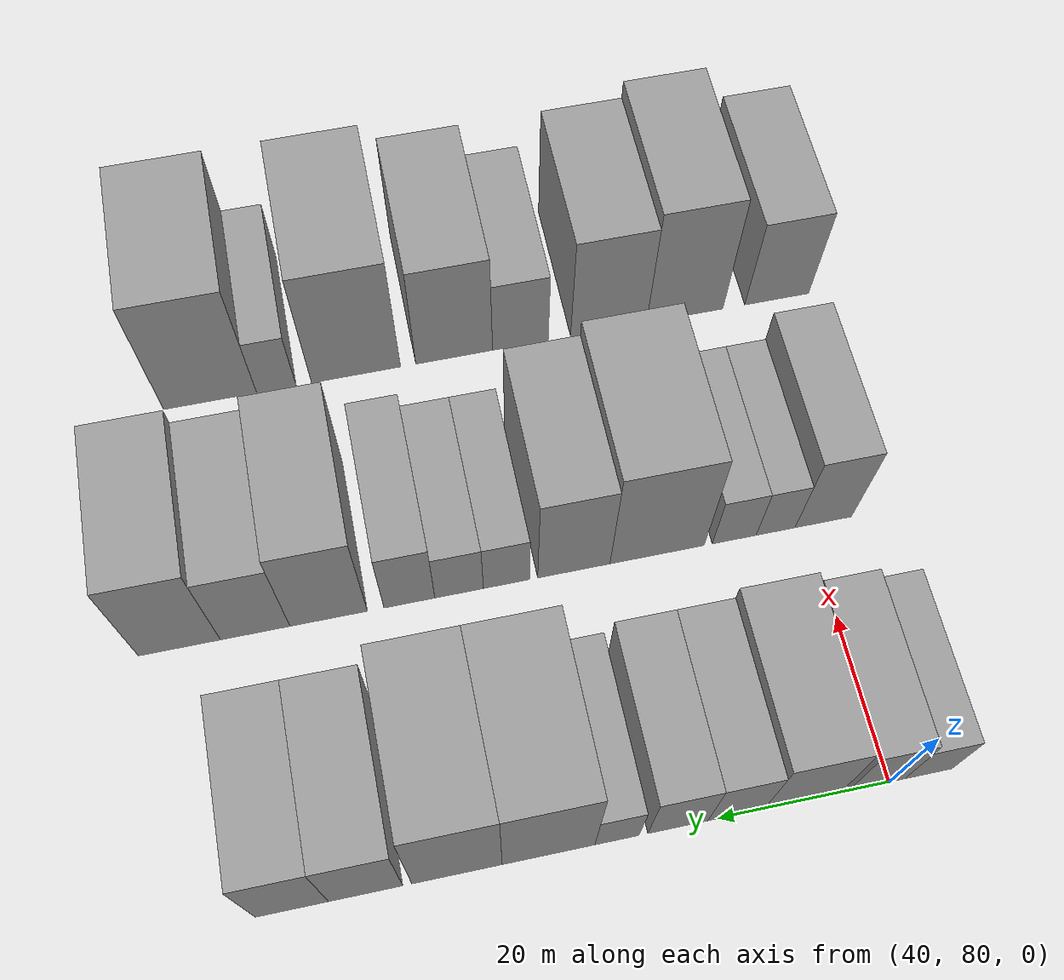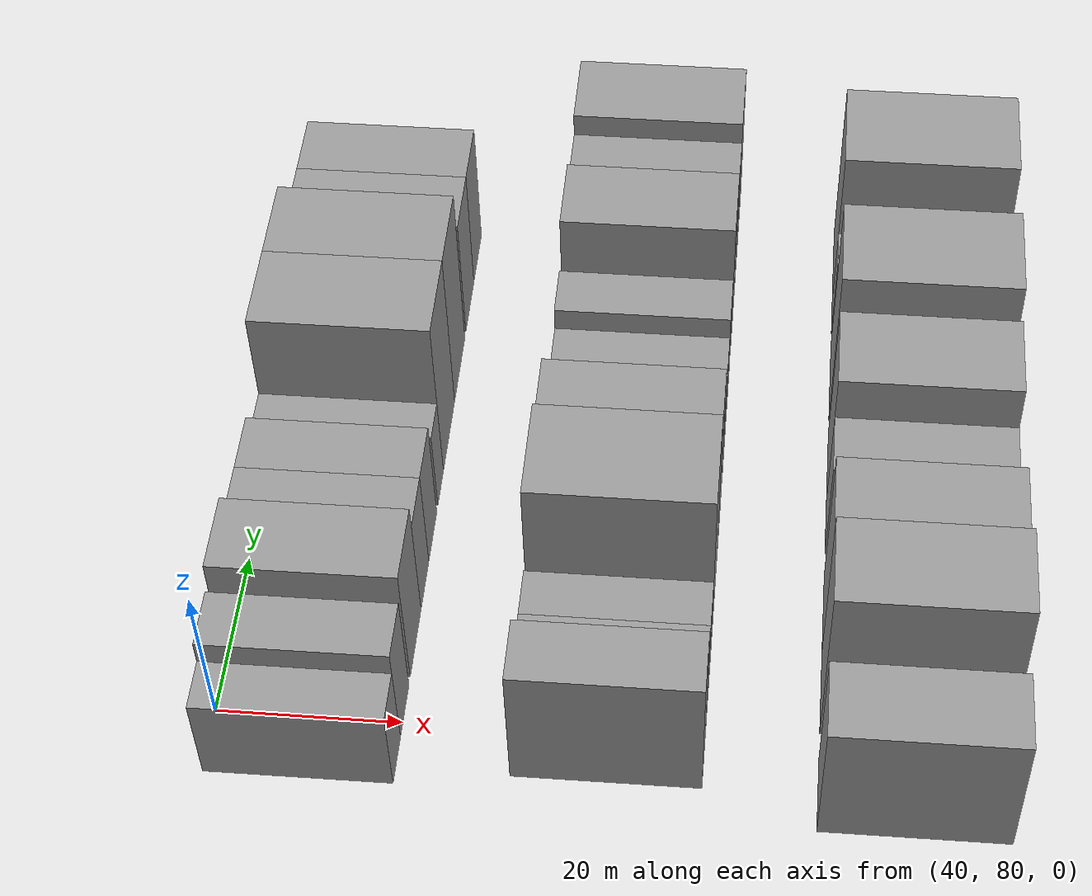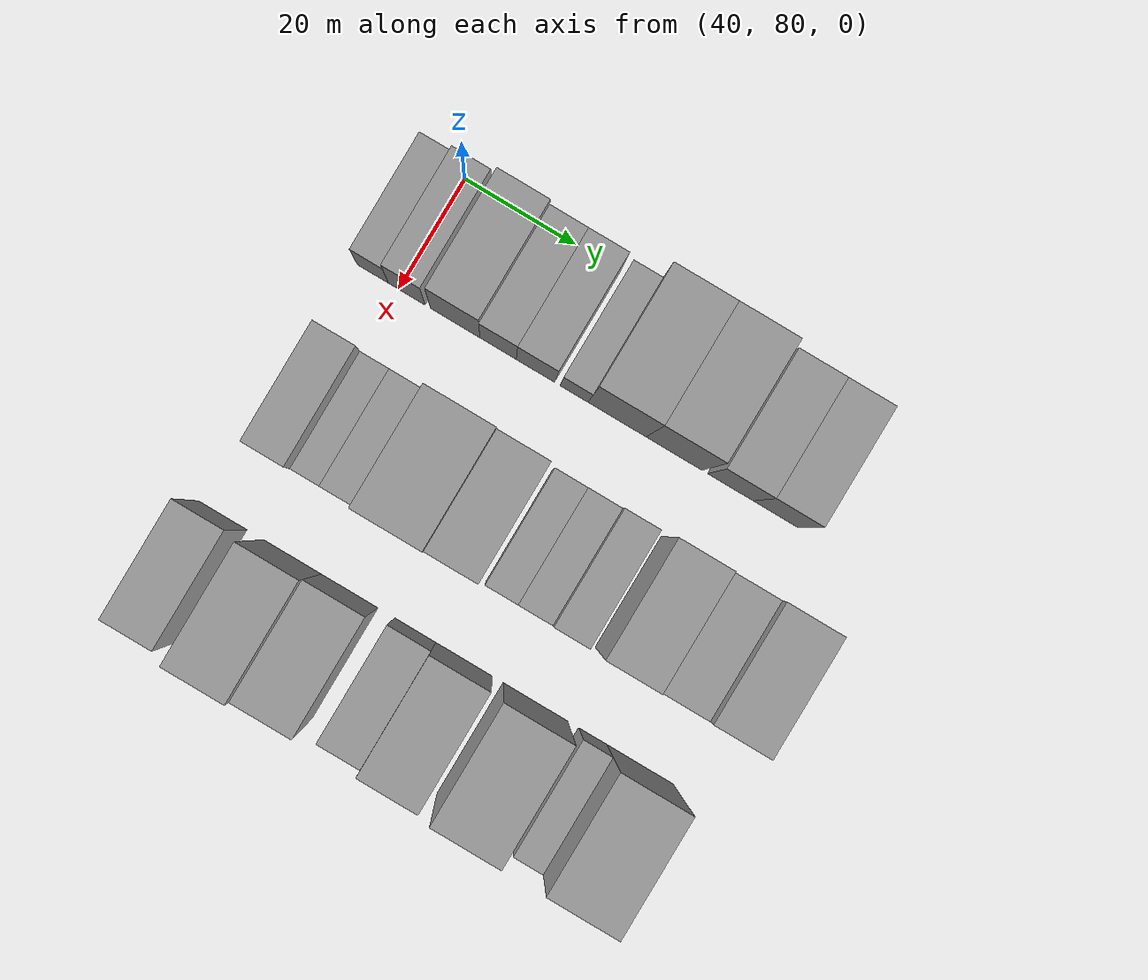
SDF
<sdf version="1.6">
 <world name="default">
  <model name="building_49">
   <static>1</static>
   <pose>50.0000 75.3613 0 0.000000 0.000000 0.000000</pose>
   <link name="link">
    <pose>0 0 6.00 0 0 0</pose>
    <collision name="collision"><geometry><box><size>20.0000 5.6104 12.0000</size></box></geometry></collision>
    <visual name="visual">
     <cast_shadows>0</cast_shadows>
     <geometry><box><size>20.0000 5.6104 12.0000</size></box></geometry>
     <material>
      <script>
       <uri>model://grey_wall/materials/scripts</uri>
       <uri>model://grey_wall/materials/textures</uri>
       <name>vrc/grey_wall</name>
      </script>
     </material>
    </visual>
   </link>
  </model>
  <model name="building_50">
   <static>1</static>
   <pose>50.0000 81.4512 0 0.000000 0.000000 0.000000</pose>
   <link name="link">
    <pose>0 0 7.50 0 0 0</pose>
    <collision name="collision"><geometry><box><size>20.0000 6.5694 15.0000</size></box></geometry></collision>
    <visual name="visual">
     <cast_shadows>0</cast_shadows>
     <geometry><box><size>20.0000 6.5694 15.0000</size></box></geometry>
     <material>
      <script>
       <uri>model://grey_wall/materials/scripts</uri>
       <uri>model://grey_wall/materials/textures</uri>
       <name>vrc/grey_wall</name>
      </script>
     </material>
    </visual>
   </link>
  </model>
  <model name="building_51">
   <static>1</static>
   <pose>50.0000 90.1794 0 0.000000 0.000000 0.000000</pose>
   <link name="link">
    <pose>0 0 9.00 0 0 0</pose>
    <collision name="collision"><geometry><box><size>20.0000 8.8872 18.0000</size></box></geometry></collision>
    <visual name="visual">
     <cast_shadows>0</cast_shadows>
     <geometry><box><size>20.0000 8.8872 18.0000</size></box></geometry>
     <material>
      <script>
       <uri>model://grey_wall/materials/scripts</uri>
       <uri>model://grey_wall/materials/textures</uri>
       <name>vrc/grey_wall</name>
      </script>
     </material>
    </visual>
   </link>
  </model>
  <model name="building_52">
   <static>1</static>
   <pose>50.0000 97.8968 0 0.000000 0.000000 0.000000</pose>
   <link name="link">
    <pose>0 0 7.50 0 0 0</pose>
    <collision name="collision"><geometry><box><size>20.0000 6.5476 15.0000</size></box></geometry></collision>
    <visual name="visual">
     <cast_shadows>0</cast_shadows>
     <geometry><box><size>20.0000 6.5476 15.0000</size></box></geometry>
     <material>
      <script>
       <uri>model://grey_wall/materials/scripts</uri>
       <uri>model://grey_wall/materials/textures</uri>
       <name>vrc/grey_wall</name>
      </script>
     </material>
    </visual>
   </link>
  </model>
  <model name="building_53">
   <static>1</static>
   <pose>50.0000 104.6237 0 0.000000 0.000000 0.000000</pose>
   <link name="link">
    <pose>0 0 7.50 0 0 0</pose>
    <collision name="collision"><geometry><box><size>20.0000 6.9063 15.0000</size></box></geometry></collision>
    <visual name="visual">
     <cast_shadows>0</cast_shadows>
     <geometry><box><size>20.0000 6.9063 15.0000</size></box></geometry>
     <material>
      <script>
       <uri>model://grey_wall/materials/scripts</uri>
       <uri>model://grey_wall/materials/textures</uri>
       <name>vrc/grey_wall</name>
      </script>
     </material>
    </visual>
   </link>
  </model>
  <model name="building_54">
   <static>1</static>
   <pose>50.0000 111.5952 0 0.000000 0.000000 0.000000</pose>
   <link name="link">
    <pose>0 0 6.00 0 0 0</pose>
    <collision name="collision"><geometry><box><size>20.0000 5.0366 12.0000</size></box></geometry></collision>
    <visual name="visual">
     <cast_shadows>0</cast_shadows>
     <geometry><box><size>20.0000 5.0366 12.0000</size></box></geometry>
     <material>
      <script>
       <uri>model://grey_wall/materials/scripts</uri>
       <uri>model://grey_wall/materials/textures</uri>
       <name>vrc/grey_wall</name>
      </script>
     </material>
    </visual>
   </link>
  </model>
  <model name="building_55">
   <static>1</static>
   <pose>50.0000 119.3480 0 0.000000 0.000000 0.000000</pose>
   <link name="link">
    <pose>0 0 12.00 0 0 0</pose>
    <collision name="collision"><geometry><box><size>20.0000 10.4690 24.0000</size></box></geometry></collision>
    <visual name="visual">
     <cast_shadows>0</cast_shadows>
     <geometry><box><size>20.0000 10.4690 24.0000</size></box></geometry>
     <material>
      <script>
       <uri>model://grey_wall/materials/scripts</uri>
       <uri>model://grey_wall/materials/textures</uri>
       <name>vrc/grey_wall</name>
      </script>
     </material>
    </visual>
   </link>
  </model>
  <model name="building_56">
   <static>1</static>
   <pose>50.0000 129.6237 0 0.000000 0.000000 0.000000</pose>
   <link name="link">
    <pose>0 0 12.00 0 0 0</pose>
    <collision name="collision"><geometry><box><size>20.0000 10.0824 24.0000</size></box></geometry></collision>
    <visual name="visual">
     <cast_shadows>0</cast_shadows>
     <geometry><box><size>20.0000 10.0824 24.0000</size></box></geometry>
     <material>
      <script>
       <uri>model://grey_wall/materials/scripts</uri>
       <uri>model://grey_wall/materials/textures</uri>
       <name>vrc/grey_wall</name>
      </script>
     </material>
    </visual>
   </link>
  </model>
  <model name="building_57">
   <static>1</static>
   <pose>50.0000 139.7622 0 0.000000 0.000000 0.000000</pose>
   <link name="link">
    <pose>0 0 9.00 0 0 0</pose>
    <collision name="collision"><geometry><box><size>20.0000 8.1948 18.0000</size></box></geometry></collision>
    <visual name="visual">
     <cast_shadows>0</cast_shadows>
     <geometry><box><size>20.0000 8.1948 18.0000</size></box></geometry>
     <material>
      <script>
       <uri>model://grey_wall/materials/scripts</uri>
       <uri>model://grey_wall/materials/textures</uri>
       <name>vrc/grey_wall</name>
      </script>
     </material>
    </visual>
   </link>
  </model>
  <model name="building_58">
   <static>1</static>
   <pose>50.0000 147.8684 0 0.000000 0.000000 0.000000</pose>
   <link name="link">
    <pose>0 0 9.00 0 0 0</pose>
    <collision name="collision"><geometry><box><size>20.0000 8.0174 18.0000</size></box></geometry></collision>
    <visual name="visual">
     <cast_shadows>0</cast_shadows>
     <geometry><box><size>20.0000 8.0174 18.0000</size></box></geometry>
     <material>
      <script>
       <uri>model://grey_wall/materials/scripts</uri>
       <uri>model://grey_wall/materials/textures</uri>
       <name>vrc/grey_wall</name>
      </script>
     </material>
    </visual>
   </link>
  </model>
  <model name="building_126">
   <static>1</static>
   <pose>82.0000 77.9327 0 0.000000 0.000000 0.000000</pose>
   <link name="link">
    <pose>0 0 9.00 0 0 0</pose>
    <collision name="collision"><geometry><box><size>20.0000 7.2041 18.0000</size></box></geometry></collision>
    <visual name="visual">
     <cast_shadows>0</cast_shadows>
     <geometry><box><size>20.0000 7.2041 18.0000</size></box></geometry>
     <material>
      <script>
       <uri>model://grey_wall/materials/scripts</uri>
       <uri>model://grey_wall/materials/textures</uri>
       <name>vrc/grey_wall</name>
      </script>
     </material>
    </visual>
   </link>
  </model>
  <model name="building_127">
   <static>1</static>
   <pose>82.0000 84.0101 0 0.000000 0.000000 0.000000</pose>
   <link name="link">
    <pose>0 0 6.00 0 0 0</pose>
    <collision name="collision"><geometry><box><size>20.0000 4.9508 12.0000</size></box></geometry></collision>
    <visual name="visual">
     <cast_shadows>0</cast_shadows>
     <geometry><box><size>20.0000 4.9508 12.0000</size></box></geometry>
     <material>
      <script>
       <uri>model://grey_wall/materials/scripts</uri>
       <uri>model://grey_wall/materials/textures</uri>
       <name>vrc/grey_wall</name>
      </script>
     </material>
    </visual>
   </link>
  </model>
  <model name="building_128">
   <static>1</static>
   <pose>82.0000 89.2519 0 0.000000 0.000000 0.000000</pose>
   <link name="link">
    <pose>0 0 6.00 0 0 0</pose>
    <collision name="collision"><geometry><box><size>20.0000 5.5328 12.0000</size></box></geometry></collision>
    <visual name="visual">
     <cast_shadows>0</cast_shadows>
     <geometry><box><size>20.0000 5.5328 12.0000</size></box></geometry>
     <material>
      <script>
       <uri>model://grey_wall/materials/scripts</uri>
       <uri>model://grey_wall/materials/textures</uri>
       <name>vrc/grey_wall</name>
      </script>
     </material>
    </visual>
   </link>
  </model>
  <model name="building_129">
   <static>1</static>
   <pose>82.0000 98.9196 0 0.000000 0.000000 0.000000</pose>
   <link name="link">
    <pose>0 0 12.00 0 0 0</pose>
    <collision name="collision"><geometry><box><size>20.0000 11.8027 24.0000</size></box></geometry></collision>
    <visual name="visual">
     <cast_shadows>0</cast_shadows>
     <geometry><box><size>20.0000 11.8027 24.0000</size></box></geometry>
     <material>
      <script>
       <uri>model://grey_wall/materials/scripts</uri>
       <uri>model://grey_wall/materials/textures</uri>
       <name>vrc/grey_wall</name>
      </script>
     </material>
    </visual>
   </link>
  </model>
  <model name="building_130">
   <static>1</static>
   <pose>82.0000 109.2888 0 0.000000 0.000000 0.000000</pose>
   <link name="link">
    <pose>0 0 10.50 0 0 0</pose>
    <collision name="collision"><geometry><box><size>20.0000 8.9356 21.0000</size></box></geometry></collision>
    <visual name="visual">
     <cast_shadows>0</cast_shadows>
     <geometry><box><size>20.0000 8.9356 21.0000</size></box></geometry>
     <material>
      <script>
       <uri>model://grey_wall/materials/scripts</uri>
       <uri>model://grey_wall/materials/textures</uri>
       <name>vrc/grey_wall</name>
      </script>
     </material>
    </visual>
   </link>
  </model>
  <model name="building_131">
   <static>1</static>
   <pose>82.0000 117.5836 0 0.000000 0.000000 0.000000</pose>
   <link name="link">
    <pose>0 0 6.00 0 0 0</pose>
    <collision name="collision"><geometry><box><size>20.0000 5.6541 12.0000</size></box></geometry></collision>
    <visual name="visual">
     <cast_shadows>0</cast_shadows>
     <geometry><box><size>20.0000 5.6541 12.0000</size></box></geometry>
     <material>
      <script>
       <uri>model://grey_wall/materials/scripts</uri>
       <uri>model://grey_wall/materials/textures</uri>
       <name>vrc/grey_wall</name>
      </script>
     </material>
    </visual>
   </link>
  </model>
  <model name="building_132">
   <static>1</static>
   <pose>82.0000 123.3682 0 0.000000 0.000000 0.000000</pose>
   <link name="link">
    <pose>0 0 6.00 0 0 0</pose>
    <collision name="collision"><geometry><box><size>20.0000 5.9150 12.0000</size></box></geometry></collision>
    <visual name="visual">
     <cast_shadows>0</cast_shadows>
     <geometry><box><size>20.0000 5.9150 12.0000</size></box></geometry>
     <material>
      <script>
       <uri>model://grey_wall/materials/scripts</uri>
       <uri>model://grey_wall/materials/textures</uri>
       <name>vrc/grey_wall</name>
      </script>
     </material>
    </visual>
   </link>
  </model>
  <model name="building_133">
   <static>1</static>
   <pose>82.0000 129.4067 0 0.000000 0.000000 0.000000</pose>
   <link name="link">
    <pose>0 0 7.50 0 0 0</pose>
    <collision name="collision"><geometry><box><size>20.0000 6.1619 15.0000</size></box></geometry></collision>
    <visual name="visual">
     <cast_shadows>0</cast_shadows>
     <geometry><box><size>20.0000 6.1619 15.0000</size></box></geometry>
     <material>
      <script>
       <uri>model://grey_wall/materials/scripts</uri>
       <uri>model://grey_wall/materials/textures</uri>
       <name>vrc/grey_wall</name>
      </script>
     </material>
    </visual>
   </link>
  </model>
  <model name="building_134">
   <static>1</static>
   <pose>82.0000 139.1286 0 0.000000 0.000000 0.000000</pose>
   <link name="link">
    <pose>0 0 10.50 0 0 0</pose>
    <collision name="collision"><geometry><box><size>20.0000 9.2820 21.0000</size></box></geometry></collision>
    <visual name="visual">
     <cast_shadows>0</cast_shadows>
     <geometry><box><size>20.0000 9.2820 21.0000</size></box></geometry>
     <material>
      <script>
       <uri>model://grey_wall/materials/scripts</uri>
       <uri>model://grey_wall/materials/textures</uri>
       <name>vrc/grey_wall</name>
      </script>
     </material>
    </visual>
   </link>
  </model>
  <model name="building_135">
   <static>1</static>
   <pose>82.0000 147.8947 0 0.000000 0.000000 0.000000</pose>
   <link name="link">
    <pose>0 0 9.00 0 0 0</pose>
    <collision name="collision"><geometry><box><size>20.0000 8.2501 18.0000</size></box></geometry></collision>
    <visual name="visual">
     <cast_shadows>0</cast_shadows>
     <geometry><box><size>20.0000 8.2501 18.0000</size></box></geometry>
     <material>
      <script>
       <uri>model://grey_wall/materials/scripts</uri>
       <uri>model://grey_wall/materials/textures</uri>
       <name>vrc/grey_wall</name>
      </script>
     </material>
    </visual>
   </link>
  </model>
  <model name="building_136">
   <static>1</static>
   <pose>82.0000 156.8533 0 0.000000 0.000000 0.000000</pose>
   <link name="link">
    <pose>0 0 10.50 0 0 0</pose>
    <collision name="collision"><geometry><box><size>20.0000 9.6671 21.0000</size></box></geometry></collision>
    <visual name="visual">
     <cast_shadows>0</cast_shadows>
     <geometry><box><size>20.0000 9.6671 21.0000</size></box></geometry>
     <material>
      <script>
       <uri>model://grey_wall/materials/scripts</uri>
       <uri>model://grey_wall/materials/textures</uri>
       <name>vrc/grey_wall</name>
      </script>
     </material>
    </visual>
   </link>
  </model>
  <model name="building_200">
   <static>1</static>
   <pose>114.0000 74.5154 0 0.000000 0.000000 0.000000</pose>
   <link name="link">
    <pose>0 0 9.00 0 0 0</pose>
    <collision name="collision"><geometry><box><size>20.0000 8.7806 18.0000</size></box></geometry></collision>
    <visual name="visual">
     <cast_shadows>0</cast_shadows>
     <geometry><box><size>20.0000 8.7806 18.0000</size></box></geometry>
     <material>
      <script>
       <uri>model://grey_wall/materials/scripts</uri>
       <uri>model://grey_wall/materials/textures</uri>
       <name>vrc/grey_wall</name>
      </script>
     </material>
    </visual>
   </link>
  </model>
  <model name="building_201">
   <static>1</static>
   <pose>114.0000 87.1027 0 0.000000 0.000000 0.000000</pose>
   <link name="link">
    <pose>0 0 12.00 0 0 0</pose>
    <collision name="collision"><geometry><box><size>20.0000 10.3941 24.0000</size></box></geometry></collision>
    <visual name="visual">
     <cast_shadows>0</cast_shadows>
     <geometry><box><size>20.0000 10.3941 24.0000</size></box></geometry>
     <material>
      <script>
       <uri>model://grey_wall/materials/scripts</uri>
       <uri>model://grey_wall/materials/textures</uri>
       <name>vrc/grey_wall</name>
      </script>
     </material>
    </visual>
   </link>
  </model>
  <model name="building_202">
   <static>1</static>
   <pose>114.0000 97.4133 0 0.000000 0.000000 0.000000</pose>
   <link name="link">
    <pose>0 0 10.50 0 0 0</pose>
    <collision name="collision"><geometry><box><size>20.0000 10.2273 21.0000</size></box></geometry></collision>
    <visual name="visual">
     <cast_shadows>0</cast_shadows>
     <geometry><box><size>20.0000 10.2273 21.0000</size></box></geometry>
     <material>
      <script>
       <uri>model://grey_wall/materials/scripts</uri>
       <uri>model://grey_wall/materials/textures</uri>
       <name>vrc/grey_wall</name>
      </script>
     </material>
    </visual>
   </link>
  </model>
  <model name="building_203">
   <static>1</static>
   <pose>114.0000 109.2241 0 0.000000 0.000000 0.000000</pose>
   <link name="link">
    <pose>0 0 7.50 0 0 0</pose>
    <collision name="collision"><geometry><box><size>20.0000 7.3943 15.0000</size></box></geometry></collision>
    <visual name="visual">
     <cast_shadows>0</cast_shadows>
     <geometry><box><size>20.0000 7.3943 15.0000</size></box></geometry>
     <material>
      <script>
       <uri>model://grey_wall/materials/scripts</uri>
       <uri>model://grey_wall/materials/textures</uri>
       <name>vrc/grey_wall</name>
      </script>
     </material>
    </visual>
   </link>
  </model>
  <model name="building_204">
   <static>1</static>
   <pose>114.0000 117.9921 0 0.000000 0.000000 0.000000</pose>
   <link name="link">
    <pose>0 0 10.50 0 0 0</pose>
    <collision name="collision"><geometry><box><size>20.0000 10.1416 21.0000</size></box></geometry></collision>
    <visual name="visual">
     <cast_shadows>0</cast_shadows>
     <geometry><box><size>20.0000 10.1416 21.0000</size></box></geometry>
     <material>
      <script>
       <uri>model://grey_wall/materials/scripts</uri>
       <uri>model://grey_wall/materials/textures</uri>
       <name>vrc/grey_wall</name>
      </script>
     </material>
    </visual>
   </link>
  </model>
  <model name="building_205">
   <static>1</static>
   <pose>114.0000 130.8657 0 0.000000 0.000000 0.000000</pose>
   <link name="link">
    <pose>0 0 12.00 0 0 0</pose>
    <collision name="collision"><geometry><box><size>20.0000 11.6056 24.0000</size></box></geometry></collision>
    <visual name="visual">
     <cast_shadows>0</cast_shadows>
     <geometry><box><size>20.0000 11.6056 24.0000</size></box></geometry>
     <material>
      <script>
       <uri>model://grey_wall/materials/scripts</uri>
       <uri>model://grey_wall/materials/textures</uri>
       <name>vrc/grey_wall</name>
      </script>
     </material>
    </visual>
   </link>
  </model>
  <model name="building_206">
   <static>1</static>
   <pose>114.0000 141.2192 0 0.000000 0.000000 0.000000</pose>
   <link name="link">
    <pose>0 0 6.00 0 0 0</pose>
    <collision name="collision"><geometry><box><size>20.0000 5.1014 12.0000</size></box></geometry></collision>
    <visual name="visual">
     <cast_shadows>0</cast_shadows>
     <geometry><box><size>20.0000 5.1014 12.0000</size></box></geometry>
     <material>
      <script>
       <uri>model://grey_wall/materials/scripts</uri>
       <uri>model://grey_wall/materials/textures</uri>
       <name>vrc/grey_wall</name>
      </script>
     </material>
    </visual>
   </link>
  </model>
  <model name="building_207">
   <static>1</static>
   <pose>114.0000 149.7264 0 0.000000 0.000000 0.000000</pose>
   <link name="link">
    <pose>0 0 12.00 0 0 0</pose>
    <collision name="collision"><geometry><box><size>20.0000 11.9129 24.0000</size></box></geometry></collision>
    <visual name="visual">
     <cast_shadows>0</cast_shadows>
     <geometry><box><size>20.0000 11.9129 24.0000</size></box></geometry>
     <material>
      <script>
       <uri>model://grey_wall/materials/scripts</uri>
       <uri>model://grey_wall/materials/textures</uri>
       <name>vrc/grey_wall</name>
      </script>
     </material>
    </visual>
   </link>
  </model>
 </world>
</sdf>
